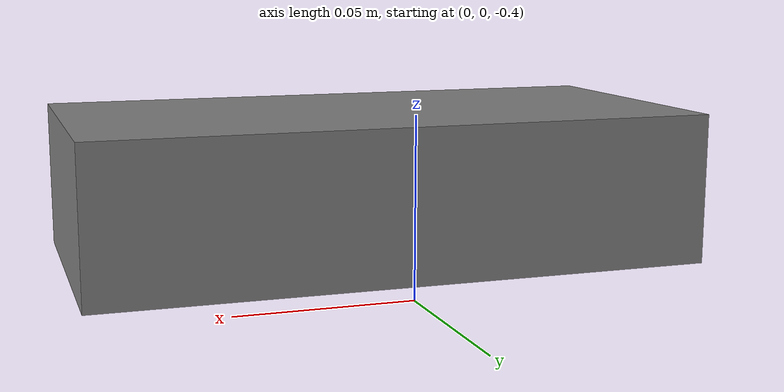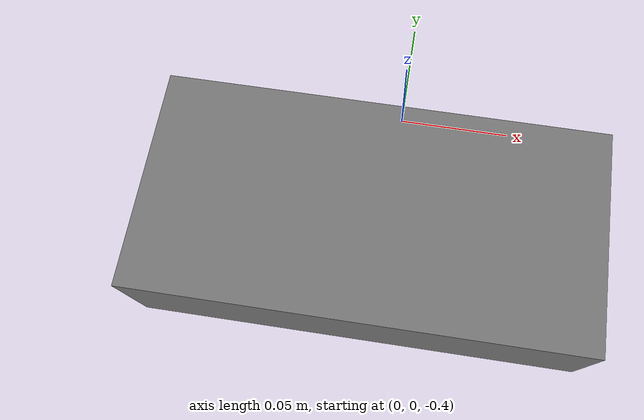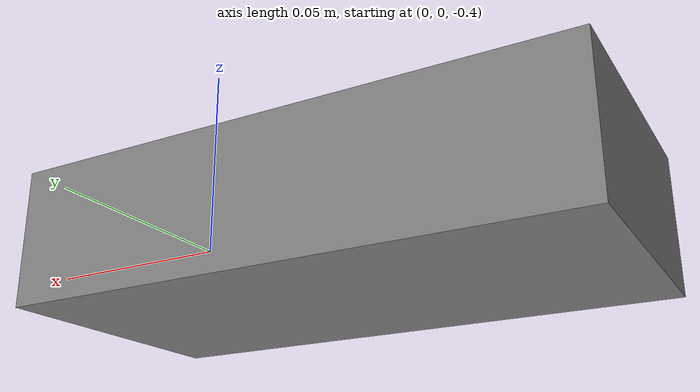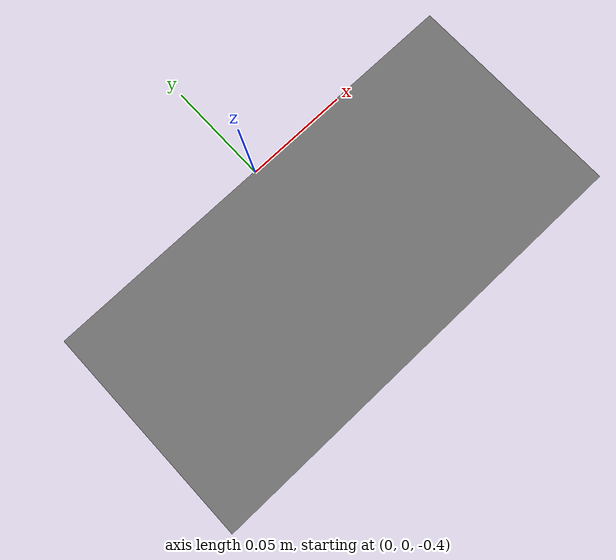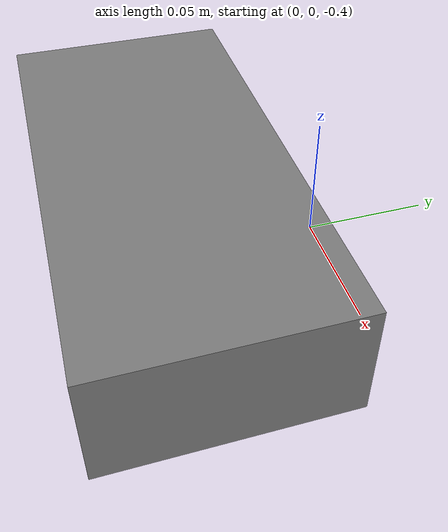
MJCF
<mujoco model="mesh_to_primitive">
<asset>
    <!-- Original mesh, if you still want it for visuals -->
    <mesh name="geom0_vismesh" file="right_foot_v2_1.stl" scale="0.001 0.001 0.001"/>
  </asset>
  <worldbody>
    <body name="body0" pos="-0.0056695023 -0.05925 -0.37768073">
      <geom name="geom0" type="box" size="0.092 0.045 0.022587799"/>
    </body>
  </worldbody>
</mujoco>
